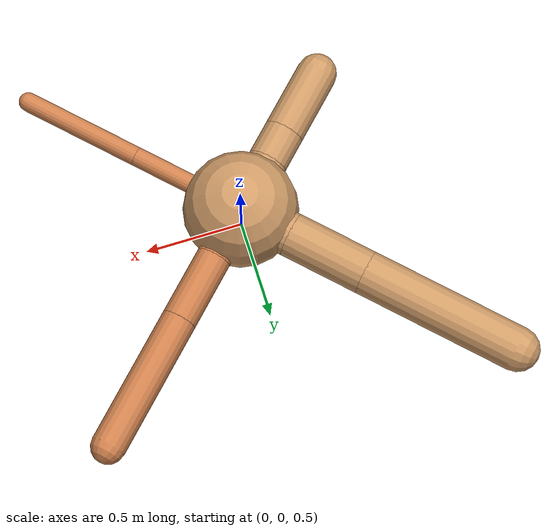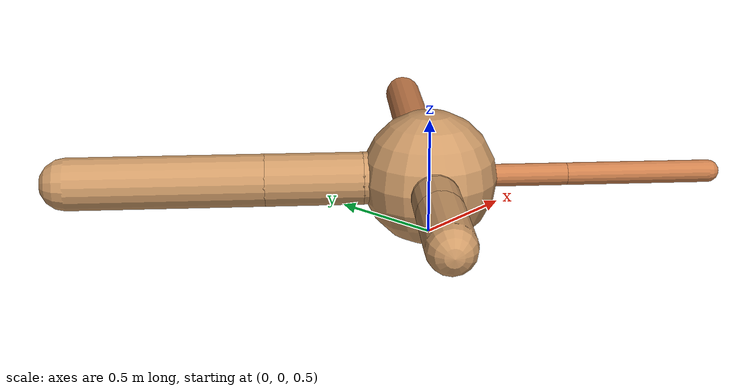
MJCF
<?xml version="1.0" ?>
<mujoco model="ant">

	<compiler angle="degree" coordinate="local" inertiafromgeom="true"/>

	<option integrator="RK4" timestep="0.01"/>

	<custom>

		<numeric data="0.0 0.0 0.55 1.0 0.0 0.0 0.0 0.0 1.0 0.0 -1.0 0.0 -1.0 0.0 1.0" name="init_qpos"/>

	</custom>

	<default>

		<joint armature="1" damping="1" limited="true"/>

		<geom conaffinity="0" condim="3" density="5.0" friction="1.5 0.1 0.1" margin="0.01" rgba="0.8 0.6 0.4 1"/>

	</default>

	<worldbody>

		<body name="torso" pos="0 0 0.75">

			<geom name="torso_geom" pos="0 0 0" size="0.29035058928262125" type="sphere"/>

			<!--joint armature="0" damping="0" limited="false" margin="0.01" name="root" pos="0 0 0" type="free"/-->

			<body name="front_left_leg" pos="0 0 0">

				<geom fromto="0 0 0 0.2 0.2 0" name="aux_1_geom" size="0.0881889015794183" type="capsule" rgba=".8 .5 .3 1"/>

				<body name="aux_1" pos="0.2 0.2 0">

					<joint axis="0 0 1" name="hip_1" pos="0.0 0.0 0.0" range="-40 40" type="hinge"/>

					<geom fromto="0 0 0 0.25438806830418215 0.25438806830418215 0" name="left_leg_geom" size="0.0881889015794183" type="capsule" rgba=".8 .5 .3 1"/>

					<body pos="0.25438806830418215 0.25438806830418215 0" name="front_left_foot">

						<joint axis="-1 1 0" name="ankle_1" pos="0.0 0.0 0.0" range="30 100" type="hinge"/>

						<geom fromto="0 0 0 0.5087761366083643 0.5087761366083643 0" name="left_ankle_geom" size="0.0881889015794183" type="capsule" rgba=".8 .5 .3 1"/>

					</body>

				</body>

			</body>

			<body name="front_right_leg" pos="0 0 0">

				<geom fromto="0 0 0 -0.2 0.2 0" name="aux_2_geom" size="0.11321632416635818" type="capsule"/>

				<body name="aux_2" pos="-0.2 0.2 0">

					<joint axis="0 0 1" name="hip_2" pos="0.0 0.0 0.0" range="-40 40" type="hinge"/>

					<geom fromto="0 0 0 -0.29500939553676825 0.29500939553676825 0" name="right_leg_geom" size="0.11321632416635818" type="capsule"/>

					<body pos="-0.29500939553676825 0.29500939553676825 0" name="front_right_foot">

						<joint axis="1 1 0" name="ankle_2" pos="0.0 0.0 0.0" range="-100 -30" type="hinge"/>

						<geom fromto="0 0 0 -0.5900187910735365 0.5900187910735365 0" name="right_ankle_geom" size="0.11321632416635818" type="capsule"/>

					</body>

				</body>

			</body>

			<body name="left_back_leg" pos="0 0 0">

				<geom fromto="0 0 0 -0.2 -0.2 0" name="aux_3_geom" size="0.10189234306771856" type="capsule"/>

				<body name="aux_3" pos="-0.2 -0.2 0">

					<joint axis="0 0 1" name="hip_3" pos="0.0 0.0 0.0" range="-40 40" type="hinge"/>

					<geom fromto="0 0 0 -0.12505842654391924 -0.12505842654391924 0" name="back_leg_geom" size="0.10189234306771856" type="capsule"/>

					<body pos="-0.12505842654391924 -0.12505842654391924 0" name="left_back_foot">

						<joint axis="-1 1 0" name="ankle_3" pos="0.0 0.0 0.0" range="-100 -30" type="hinge"/>

						<geom fromto="0 0 0 -0.2501168530878385 -0.2501168530878385 0" name="third_ankle_geom" size="0.10189234306771856" type="capsule"/>

					</body>

				</body>

			</body>

			<body name="right_back_leg" pos="0 0 0">

				<geom fromto="0 0 0 0.2 -0.2 0" name="aux_4_geom" size="0.048459703448382324" type="capsule" rgba=".8 .5 .3 1"/>

				<body name="aux_4" pos="0.2 -0.2 0">

					<joint axis="0 0 1" name="hip_4" pos="0.0 0.0 0.0" range="-40 40" type="hinge"/>

					<geom fromto="0 0 0 0.2191913417926993 -0.2191913417926993 0" name="rightback_leg_geom" size="0.048459703448382324" type="capsule" rgba=".8 .5 .3 1"/>

					<body pos="0.2191913417926993 -0.2191913417926993 0" name="right_back_foot">

						<joint axis="1 1 0" name="ankle_4" pos="0.0 0.0 0.0" range="30 100" type="hinge"/>

						<geom fromto="0 0 0 0.4383826835853986 -0.4383826835853986 0" name="fourth_ankle_geom" size="0.048459703448382324" type="capsule" rgba=".8 .5 .3 1"/>

					</body>

				</body>

			</body>

		</body>

	</worldbody>

	<actuator>

		<motor ctrllimited="true" ctrlrange="-1.0 1.0" joint="hip_4" gear="150"/>

		<motor ctrllimited="true" ctrlrange="-1.0 1.0" joint="ankle_4" gear="150"/>

		<motor ctrllimited="true" ctrlrange="-1.0 1.0" joint="hip_1" gear="150"/>

		<motor ctrllimited="true" ctrlrange="-1.0 1.0" joint="ankle_1" gear="150"/>

		<motor ctrllimited="true" ctrlrange="-1.0 1.0" joint="hip_2" gear="150"/>

		<motor ctrllimited="true" ctrlrange="-1.0 1.0" joint="ankle_2" gear="150"/>

		<motor ctrllimited="true" ctrlrange="-1.0 1.0" joint="hip_3" gear="150"/>

		<motor ctrllimited="true" ctrlrange="-1.0 1.0" joint="ankle_3" gear="150"/>

	</actuator>

</mujoco>
